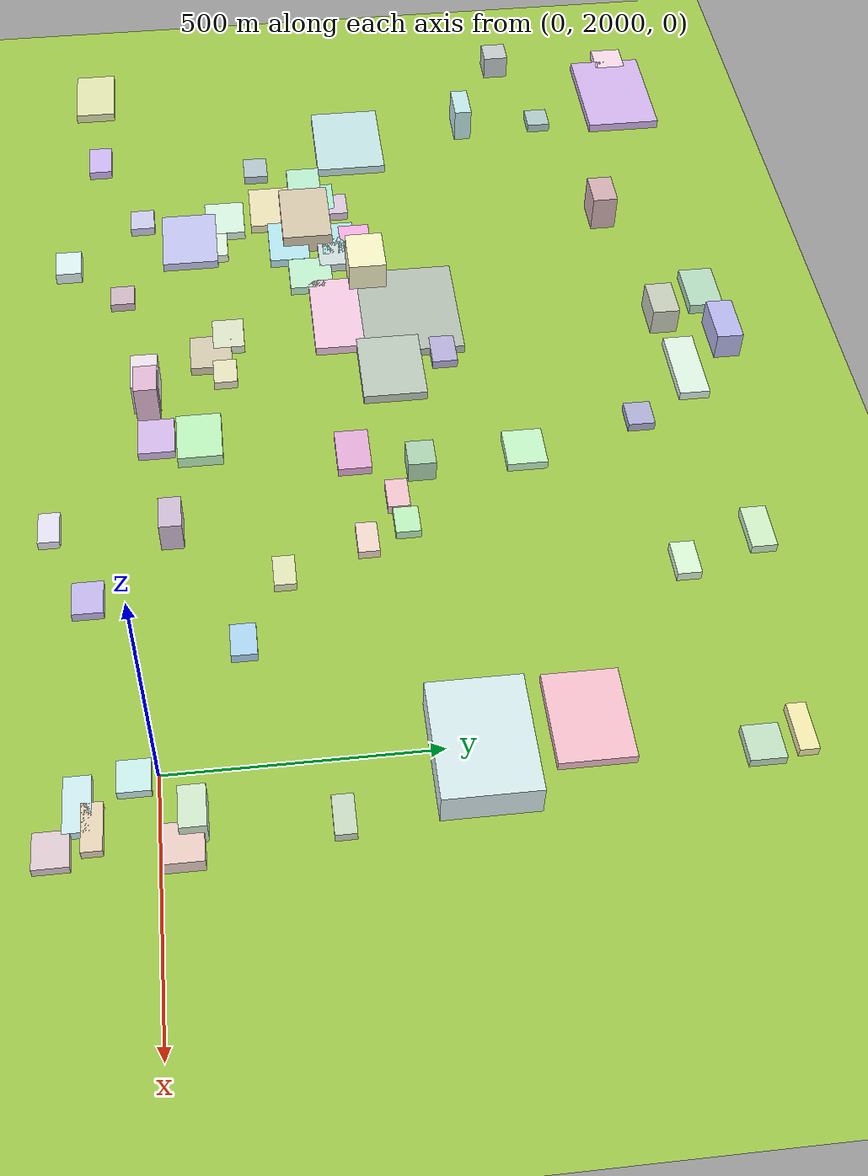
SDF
<sdf version="1.9">
 <world name="city_map">
  <model name="ground_plane">
   <static>1</static>
   <link name="link">
    <collision name="collision">
     <geometry><plane><normal>0 0 1</normal><size>11000 11000</size></plane></geometry>
    </collision>
    <visual name="visual">
     <geometry><plane><normal>0 0 1</normal><size>11000 11000</size></plane></geometry>
     <material>
      <ambient>0.551 0.712 0.210 1</ambient>
      <diffuse>0.651 0.812 0.310 1</diffuse>
      <specular>0.1 0.1 0.05 1</specular>
     </material>
    </visual>
   </link>
  </model>
  <model name="building_605152010">
   <static>1</static>
   <pose>-1090.0004392026135 2561.046129092921 10.0 0 0 0</pose>
   <link name="link">
    <collision name="collision">
     <geometry><box><size>253.57387508941096 210.33389999959695 20</size></box></geometry>
    </collision>
    <visual name="visual">
     <cast_shadows>false</cast_shadows>
     <geometry><box><size>253.57387508941096 210.33389999959695 20</size></box></geometry>
     <material>
      <ambient>0.630 0.675 0.625 1</ambient>
      <diffuse>0.730 0.775 0.725 1</diffuse>
      <specular>0.219 0.233 0.217 1</specular>
      <emissive>0.01 0.01 0.01 1</emissive>
     </material>
    </visual>
   </link>
  </model>
  <model name="building_438225687">
   <static>1</static>
   <pose>-1810.3527287770924 3158.581528062216 10.0 0 0 0</pose>
   <link name="link">
    <collision name="collision">
     <geometry><box><size>254.80506294616396 167.55449999971006 20</size></box></geometry>
    </collision>
    <visual name="visual">
     <cast_shadows>false</cast_shadows>
     <geometry><box><size>254.80506294616396 167.55449999971006 20</size></box></geometry>
     <material>
      <ambient>0.753 0.633 0.860 1</ambient>
      <diffuse>0.853 0.733 0.960 1</diffuse>
      <specular>0.256 0.220 0.288 1</specular>
      <emissive>0.01 0.01 0.01 1</emissive>
     </material>
    </visual>
   </link>
  </model>
  <model name="building_968490449">
   <static>1</static>
   <pose>21.204105575061124 2558.1423232748857 34.97503796928707 0 0 0</pose>
   <link name="link">
    <collision name="collision">
     <geometry><box><size>232.54499999967493 177.1502782101934 69.95007593857414</size></box></geometry>
    </collision>
    <visual name="visual">
     <cast_shadows>false</cast_shadows>
     <geometry><box><size>232.54499999967493 177.1502782101934 69.95007593857414</size></box></geometry>
     <material>
      <ambient>0.772 0.850 0.857 1</ambient>
      <diffuse>0.872 0.950 0.957 1</diffuse>
      <specular>0.261 0.285 0.287 1</specular>
      <emissive>0.01 0.01 0.01 1</emissive>
     </material>
    </visual>
   </link>
  </model>
  <model name="building_922311697">
   <static>1</static>
   <pose>-1689.259264352267 2481.973242355033 10.0 0 0 0</pose>
   <link name="link">
    <collision name="collision">
     <geometry><box><size>213.8525999997043 157.81866710290294 20</size></box></geometry>
    </collision>
    <visual name="visual">
     <cast_shadows>false</cast_shadows>
     <geometry><box><size>213.8525999997043 157.81866710290294 20</size></box></geometry>
     <material>
      <ambient>0.695 0.823 0.822 1</ambient>
      <diffuse>0.795 0.923 0.922 1</diffuse>
      <specular>0.239 0.277 0.277 1</specular>
      <emissive>0.01 0.01 0.01 1</emissive>
     </material>
    </visual>
   </link>
  </model>
  <model name="building_429063418">
   <static>1</static>
   <pose>-1093.9294689881126 2416.256806151669 10.0 0 0 0</pose>
   <link name="link">
    <collision name="collision">
     <geometry><box><size>212.6112206124058 131.37960000049986 20</size></box></geometry>
    </collision>
    <visual name="visual">
     <cast_shadows>false</cast_shadows>
     <geometry><box><size>212.6112206124058 131.37960000049986 20</size></box></geometry>
     <material>
      <ambient>0.891 0.723 0.816 1</ambient>
      <diffuse>0.991 0.823 0.916 1</diffuse>
      <specular>0.297 0.247 0.275 1</specular>
      <emissive>0.01 0.01 0.01 1</emissive>
     </material>
    </visual>
   </link>
  </model>
  <model name="building_104849475">
   <static>1</static>
   <pose>-30.34658473190393 2755.004606092411 10.0 0 0 0</pose>
   <link name="link">
    <collision name="collision">
     <geometry><box><size>183.76518512480968 140.95889999966005 20</size></box></geometry>
    </collision>
    <visual name="visual">
     <cast_shadows>false</cast_shadows>
     <geometry><box><size>183.76518512480968 140.95889999966005 20</size></box></geometry>
     <material>
      <ambient>0.898 0.683 0.735 1</ambient>
      <diffuse>0.998 0.783 0.835 1</diffuse>
      <specular>0.299 0.235 0.251 1</specular>
      <emissive>0.01 0.01 0.01 1</emissive>
     </material>
    </visual>
   </link>
  </model>
  <model name="building_554772582">
   <static>1</static>
   <pose>-921.6186555184223 2504.428664548281 10.5 0 0 0</pose>
   <link name="link">
    <collision name="collision">
     <geometry><box><size>171.53940000053325 132.90053230693326 21.0</size></box></geometry>
    </collision>
    <visual name="visual">
     <cast_shadows>false</cast_shadows>
     <geometry><box><size>171.53940000053325 132.90053230693326 21.0</size></box></geometry>
     <material>
      <ambient>0.664 0.719 0.663 1</ambient>
      <diffuse>0.764 0.819 0.763 1</diffuse>
      <specular>0.229 0.246 0.229 1</specular>
      <emissive>0.01 0.01 0.01 1</emissive>
     </material>
    </visual>
   </link>
  </model>
  <model name="building_875252734">
   <static>1</static>
   <pose>-1368.621694239439 2093.9339026299212 10.0 0 0 0</pose>
   <link name="link">
    <collision name="collision">
     <geometry><box><size>161.66039999944815 121.40120152400146 20</size></box></geometry>
    </collision>
    <visual name="visual">
     <cast_shadows>false</cast_shadows>
     <geometry><box><size>161.66039999944815 121.40120152400146 20</size></box></geometry>
     <material>
      <ambient>0.693 0.707 0.875 1</ambient>
      <diffuse>0.793 0.807 0.975 1</diffuse>
      <specular>0.238 0.242 0.293 1</specular>
      <emissive>0.01 0.01 0.01 1</emissive>
     </material>
    </visual>
   </link>
  </model>
  <model name="building_58508939">
   <static>1</static>
   <pose>-1403.71616891745 2359.1274486803854 22.5 0 0 0</pose>
   <link name="link">
    <collision name="collision">
     <geometry><box><size>166.97730000006317 109.72997055668385 45.0</size></box></geometry>
    </collision>
    <visual name="visual">
     <cast_shadows>false</cast_shadows>
     <geometry><box><size>166.97730000006317 109.72997055668385 45.0</size></box></geometry>
     <material>
      <ambient>0.776 0.714 0.605 1</ambient>
      <diffuse>0.876 0.814 0.705 1</diffuse>
      <specular>0.263 0.244 0.212 1</specular>
      <emissive>0.01 0.01 0.01 1</emissive>
     </material>
    </visual>
   </link>
  </model>
  <model name="building_4951930">
   <static>1</static>
   <pose>-1928.4442252635147 1877.6238957390942 10.5 0 0 0</pose>
   <link name="link">
    <collision name="collision">
     <geometry><box><size>155.16514669670994 90.84239999999966 21.0</size></box></geometry>
    </collision>
    <visual name="visual">
     <cast_shadows>false</cast_shadows>
     <geometry><box><size>155.16514669670994 90.84239999999966 21.0</size></box></geometry>
     <material>
      <ambient>0.812 0.830 0.618 1</ambient>
      <diffuse>0.912 0.930 0.718 1</diffuse>
      <specular>0.274 0.279 0.215 1</specular>
      <emissive>0.01 0.01 0.01 1</emissive>
     </material>
    </visual>
   </link>
  </model>
  <model name="building_157729227">
   <static>1</static>
   <pose>-1461.0033139935167 2281.839985267316 10.0 0 0 0</pose>
   <link name="link">
    <collision name="collision">
     <geometry><box><size>130.0722992589496 93.61740000009178 20</size></box></geometry>
    </collision>
    <visual name="visual">
     <cast_shadows>false</cast_shadows>
     <geometry><box><size>130.0722992589496 93.61740000009178 20</size></box></geometry>
     <material>
      <ambient>0.856 0.811 0.643 1</ambient>
      <diffuse>0.956 0.911 0.743 1</diffuse>
      <specular>0.287 0.273 0.223 1</specular>
      <emissive>0.01 0.01 0.01 1</emissive>
     </material>
    </visual>
   </link>
  </model>
  <model name="building_679973955">
   <static>1</static>
   <pose>-1338.297880740061 2316.1548786232356 10.0 0 0 0</pose>
   <link name="link">
    <collision name="collision">
     <geometry><box><size>126.50670000034125 88.42412519617244 20</size></box></geometry>
    </collision>
    <visual name="visual">
     <cast_shadows>false</cast_shadows>
     <geometry><box><size>126.50670000034125 88.42412519617244 20</size></box></geometry>
     <material>
      <ambient>0.633 0.837 0.875 1</ambient>
      <diffuse>0.733 0.937 0.975 1</diffuse>
      <specular>0.220 0.281 0.293 1</specular>
      <emissive>0.01 0.01 0.01 1</emissive>
     </material>
    </visual>
   </link>
  </model>
  <model name="building_557447676">
   <static>1</static>
   <pose>-758.6286345135179 2095.9711284665427 13.501403675846216 0 0 0</pose>
   <link name="link">
    <collision name="collision">
     <geometry><box><size>115.70640000032029 90.99372598987674 27.002807351692432</size></box></geometry>
    </collision>
    <visual name="visual">
     <cast_shadows>false</cast_shadows>
     <geometry><box><size>115.70640000032029 90.99372598987674 27.002807351692432</size></box></geometry>
     <material>
      <ambient>0.669 0.891 0.663 1</ambient>
      <diffuse>0.769 0.991 0.763 1</diffuse>
      <specular>0.231 0.297 0.229 1</specular>
      <emissive>0.01 0.01 0.01 1</emissive>
     </material>
    </visual>
   </link>
  </model>
  <model name="building_799010972">
   <static>1</static>
   <pose>-859.2276833179002 3122.506433203267 10.0 0 0 0</pose>
   <link name="link">
    <collision name="collision">
     <geometry><box><size>163.3875567000238 63.114600000126586 20</size></box></geometry>
    </collision>
    <visual name="visual">
     <cast_shadows>false</cast_shadows>
     <geometry><box><size>163.3875567000238 63.114600000126586 20</size></box></geometry>
     <material>
      <ambient>0.803 0.885 0.819 1</ambient>
      <diffuse>0.903 0.985 0.919 1</diffuse>
      <specular>0.271 0.296 0.276 1</specular>
      <emissive>0.01 0.01 0.01 1</emissive>
     </material>
    </visual>
   </link>
  </model>
  <model name="building_758838723">
   <static>1</static>
   <pose>-1431.7924603986364 2175.704629955954 10.0 0 0 0</pose>
   <link name="link">
    <collision name="collision">
     <geometry><box><size>104.97270000028891 87.89369583546363 20</size></box></geometry>
    </collision>
    <visual name="visual">
     <cast_shadows>false</cast_shadows>
     <geometry><box><size>104.97270000028891 87.89369583546363 20</size></box></geometry>
     <material>
      <ambient>0.774 0.889 0.813 1</ambient>
      <diffuse>0.874 0.989 0.913 1</diffuse>
      <specular>0.262 0.297 0.274 1</specular>
      <emissive>0.01 0.01 0.01 1</emissive>
     </material>
    </visual>
   </link>
  </model>
  <model name="building_178629959">
   <static>1</static>
   <pose>-1296.613016695994 2425.5703540661852 10.0 0 0 0</pose>
   <link name="link">
    <collision name="collision">
     <geometry><box><size>98.20403414232044 90.587100000171 20</size></box></geometry>
    </collision>
    <visual name="visual">
     <cast_shadows>false</cast_shadows>
     <geometry><box><size>98.20403414232044 90.587100000171 20</size></box></geometry>
     <material>
      <ambient>0.743 0.798 0.800 1</ambient>
      <diffuse>0.843 0.898 0.900 1</diffuse>
      <specular>0.253 0.269 0.270 1</specular>
      <emissive>0.01 0.01 0.01 1</emissive>
     </material>
    </visual>
   </link>
  </model>
  <model name="building_101976543">
   <static>1</static>
   <pose>-1227.763648271684 2357.811972986206 10.0 0 0 0</pose>
   <link name="link">
    <collision name="collision">
     <geometry><box><size>94.03376214523708 93.69510000021108 20</size></box></geometry>
    </collision>
    <visual name="visual">
     <cast_shadows>false</cast_shadows>
     <geometry><box><size>94.03376214523708 93.69510000021108 20</size></box></geometry>
     <material>
      <ambient>0.680 0.879 0.735 1</ambient>
      <diffuse>0.780 0.979 0.835 1</diffuse>
      <specular>0.234 0.294 0.251 1</specular>
      <emissive>0.01 0.01 0.01 1</emissive>
     </material>
    </visual>
   </link>
  </model>
  <model name="building_751161418">
   <static>1</static>
   <pose>-1217.4440083890572 2479.5587635785705 41.850076509856414 0 0 0</pose>
   <link name="link">
    <collision name="collision">
     <geometry><box><size>106.4933999999198 81.29943594331169 83.70015301971283</size></box></geometry>
    </collision>
    <visual name="visual">
     <cast_shadows>false</cast_shadows>
     <geometry><box><size>106.4933999999198 81.29943594331169 83.70015301971283</size></box></geometry>
     <material>
      <ambient>0.896 0.885 0.703 1</ambient>
      <diffuse>0.996 0.985 0.803 1</diffuse>
      <specular>0.299 0.296 0.241 1</specular>
      <emissive>0.01 0.01 0.01 1</emissive>
     </material>
    </visual>
   </link>
  </model>
  <model name="building_145806836">
   <static>1</static>
   <pose>-1086.0829913904113 3206.6516495671167 12.0 0 0 0</pose>
   <link name="link">
    <collision name="collision">
     <geometry><box><size>114.50759999971893 72.40457650954914 24.0</size></box></geometry>
    </collision>
    <visual name="visual">
     <cast_shadows>false</cast_shadows>
     <geometry><box><size>114.50759999971893 72.40457650954914 24.0</size></box></geometry>
     <material>
      <ambient>0.635 0.788 0.676 1</ambient>
      <diffuse>0.735 0.888 0.776 1</diffuse>
      <specular>0.221 0.266 0.233 1</specular>
      <emissive>0.01 0.01 0.01 1</emissive>
     </material>
    </visual>
   </link>
  </model>
  <model name="building_259324709">
   <static>1</static>
   <pose>-1315.5473584711694 2465.7864165679507 10.0 0 0 0</pose>
   <link name="link">
    <collision name="collision">
     <geometry><box><size>119.75877242912912 68.80889999963102 20</size></box></geometry>
    </collision>
    <visual name="visual">
     <cast_shadows>false</cast_shadows>
     <geometry><box><size>119.75877242912912 68.80889999963102 20</size></box></geometry>
     <material>
      <ambient>0.890 0.615 0.824 1</ambient>
      <diffuse>0.990 0.715 0.924 1</diffuse>
      <specular>0.297 0.214 0.277 1</specular>
      <emissive>0.01 0.01 0.01 1</emissive>
     </material>
    </visual>
   </link>
  </model>
  <model name="building_804813063">
   <static>1</static>
   <pose>-1001.8836837868802 2128.302864517569 10.0 0 0 0</pose>
   <link name="link">
    <collision name="collision">
     <geometry><box><size>92.37026483995652 87.5345999999908 20</size></box></geometry>
    </collision>
    <visual name="visual">
     <cast_shadows>false</cast_shadows>
     <geometry><box><size>92.37026483995652 87.5345999999908 20</size></box></geometry>
     <material>
      <ambient>0.761 0.725 0.615 1</ambient>
      <diffuse>0.861 0.825 0.715 1</diffuse>
      <specular>0.258 0.248 0.214 1</specular>
      <emissive>0.01 0.01 0.01 1</emissive>
     </material>
    </visual>
   </link>
  </model>
  <model name="building_835252563">
   <static>1</static>
   <pose>-666.4382808632212 2745.808377945315 10.0 0 0 0</pose>
   <link name="link">
    <collision name="collision">
     <geometry><box><size>90.31331120341724 81.16320000046073 20</size></box></geometry>
    </collision>
    <visual name="visual">
     <cast_shadows>false</cast_shadows>
     <geometry><box><size>90.31331120341724 81.16320000046073 20</size></box></geometry>
     <material>
      <ambient>0.694 0.892 0.702 1</ambient>
      <diffuse>0.794 0.992 0.802 1</diffuse>
      <specular>0.238 0.298 0.240 1</specular>
      <emissive>0.01 0.01 0.01 1</emissive>
     </material>
    </visual>
   </link>
  </model>
  <model name="building_911873792">
   <static>1</static>
   <pose>-1336.4380659294807 2427.550187791482 10.0 0 0 0</pose>
   <link name="link">
    <collision name="collision">
     <geometry><box><size>101.28244345079916 72.2054999998889 20</size></box></geometry>
    </collision>
    <visual name="visual">
     <cast_shadows>false</cast_shadows>
     <geometry><box><size>101.28244345079916 72.2054999998889 20</size></box></geometry>
     <material>
      <ambient>0.632 0.837 0.838 1</ambient>
      <diffuse>0.732 0.937 0.938 1</diffuse>
      <specular>0.220 0.281 0.281 1</specular>
      <emissive>0.01 0.01 0.01 1</emissive>
     </material>
    </visual>
   </link>
  </model>
  <model name="building_584296135">
   <static>1</static>
   <pose>-695.0980331462798 2401.5717741028566 10.0 0 0 0</pose>
   <link name="link">
    <collision name="collision">
     <geometry><box><size>101.64079973804154 67.86539999964702 20</size></box></geometry>
    </collision>
    <visual name="visual">
     <cast_shadows>false</cast_shadows>
     <geometry><box><size>101.64079973804154 67.86539999964702 20</size></box></geometry>
     <material>
      <ambient>0.830 0.604 0.784 1</ambient>
      <diffuse>0.930 0.704 0.884 1</diffuse>
      <specular>0.279 0.211 0.265 1</specular>
      <emissive>0.01 0.01 0.01 1</emissive>
     </material>
    </visual>
   </link>
  </model>
  <model name="building_69752898">
   <static>1</static>
   <pose>-773.05140017166 2008.8412900454723 10.0 0 0 0</pose>
   <link name="link">
    <collision name="collision">
     <geometry><box><size>90.18519067328326 74.81399999961269 20</size></box></geometry>
    </collision>
    <visual name="visual">
     <cast_shadows>false</cast_shadows>
     <geometry><box><size>90.18519067328326 74.81399999961269 20</size></box></geometry>
     <material>
      <ambient>0.760 0.657 0.850 1</ambient>
      <diffuse>0.860 0.757 0.950 1</diffuse>
      <specular>0.258 0.227 0.285 1</specular>
      <emissive>0.01 0.01 0.01 1</emissive>
     </material>
    </visual>
   </link>
  </model>
  <model name="building_334643381">
   <static>1</static>
   <pose>-945.4470550414569 3219.765687186899 30.720501529912877 0 0 0</pose>
   <link name="link">
    <collision name="collision">
     <geometry><box><size>108.31379999989821 55.17230690770176 61.44100305982575</size></box></geometry>
    </collision>
    <visual name="visual">
     <cast_shadows>false</cast_shadows>
     <geometry><box><size>108.31379999989821 55.17230690770176 61.44100305982575</size></box></geometry>
     <material>
      <ambient>0.646 0.644 0.862 1</ambient>
      <diffuse>0.746 0.744 0.962 1</diffuse>
      <specular>0.224 0.223 0.289 1</specular>
      <emissive>0.01 0.01 0.01 1</emissive>
     </material>
    </visual>
   </link>
  </model>
  <model name="building_175955863">
   <static>1</static>
   <pose>-1524.5088993786062 2364.195395735374 20.22082423482812 0 0 0</pose>
   <link name="link">
    <collision name="collision">
     <geometry><box><size>79.06529999960554 74.39502805240643 40.44164846965624</size></box></geometry>
    </collision>
    <visual name="visual">
     <cast_shadows>false</cast_shadows>
     <geometry><box><size>79.06529999960554 74.39502805240643 40.44164846965624</size></box></geometry>
     <material>
      <ambient>0.654 0.866 0.743 1</ambient>
      <diffuse>0.754 0.966 0.843 1</diffuse>
      <specular>0.226 0.290 0.253 1</specular>
      <emissive>0.01 0.01 0.01 1</emissive>
     </material>
    </visual>
   </link>
  </model>
  <model name="building_184831475">
   <static>1</static>
   <pose>-1053.8020340390708 2167.196533297112 10.0 0 0 0</pose>
   <link name="link">
    <collision name="collision">
     <geometry><box><size>83.61629999994591 66.20221714817427 20</size></box></geometry>
    </collision>
    <visual name="visual">
     <cast_shadows>false</cast_shadows>
     <geometry><box><size>83.61629999994591 66.20221714817427 20</size></box></geometry>
     <material>
      <ambient>0.804 0.825 0.712 1</ambient>
      <diffuse>0.904 0.925 0.812 1</diffuse>
      <specular>0.271 0.278 0.244 1</specular>
      <emissive>0.01 0.01 0.01 1</emissive>
     </material>
    </visual>
   </link>
  </model>
  <model name="building_420347666">
   <static>1</static>
   <pose>148.51814181692026 2039.5545163890877 16.19269606800861 0 0 0</pose>
   <link name="link">
    <collision name="collision">
     <geometry><box><size>75.46889999937889 72.32046461505473 32.38539213601722</size></box></geometry>
    </collision>
    <visual name="visual">
     <cast_shadows>false</cast_shadows>
     <geometry><box><size>75.46889999937889 72.32046461505473 32.38539213601722</size></box></geometry>
     <material>
      <ambient>0.856 0.743 0.711 1</ambient>
      <diffuse>0.956 0.843 0.811 1</diffuse>
      <specular>0.287 0.253 0.243 1</specular>
      <emissive>0.01 0.01 0.01 1</emissive>
     </material>
    </visual>
   </link>
  </model>
  <model name="building_61054031">
   <static>1</static>
   <pose>52.058420547600846 1862.1626189116662 10.0 0 0 0</pose>
   <link name="link">
    <collision name="collision">
     <geometry><box><size>108.40260000014723 48.88834569917706 20</size></box></geometry>
    </collision>
    <visual name="visual">
     <cast_shadows>false</cast_shadows>
     <geometry><box><size>108.40260000014723 48.88834569917706 20</size></box></geometry>
     <material>
      <ambient>0.738 0.861 0.876 1</ambient>
      <diffuse>0.838 0.961 0.976 1</diffuse>
      <specular>0.251 0.288 0.293 1</specular>
      <emissive>0.01 0.01 0.01 1</emissive>
     </material>
    </visual>
   </link>
  </model>
  <model name="building_562005176">
   <static>1</static>
   <pose>-1483.0124475557986 2400.0688249833297 10.0 0 0 0</pose>
   <link name="link">
    <collision name="collision">
     <geometry><box><size>87.92309999979864 59.05658226685598 20</size></box></geometry>
    </collision>
    <visual name="visual">
     <cast_shadows>false</cast_shadows>
     <geometry><box><size>87.92309999979864 59.05658226685598 20</size></box></geometry>
     <material>
      <ambient>0.606 0.859 0.753 1</ambient>
      <diffuse>0.706 0.959 0.853 1</diffuse>
      <specular>0.212 0.288 0.256 1</specular>
      <emissive>0.01 0.01 0.01 1</emissive>
     </material>
    </visual>
   </link>
  </model>
  <model name="building_326389789">
   <static>1</static>
   <pose>-1948.7446176067278 3170.8431766900358 10.0 0 0 0</pose>
   <link name="link">
    <collision name="collision">
     <geometry><box><size>72.4941000001067 71.29148206553474 20</size></box></geometry>
    </collision>
    <visual name="visual">
     <cast_shadows>false</cast_shadows>
     <geometry><box><size>72.4941000001067 71.29148206553474 20</size></box></geometry>
     <material>
      <ambient>0.891 0.784 0.836 1</ambient>
      <diffuse>0.991 0.884 0.936 1</diffuse>
      <specular>0.297 0.265 0.281 1</specular>
      <emissive>0.01 0.01 0.01 1</emissive>
     </material>
    </visual>
   </link>
  </model>
  <model name="building_88513112">
   <static>1</static>
   <pose>-903.8404036243118 1992.0779598854092 39.017588798797625 0 0 0</pose>
   <link name="link">
    <collision name="collision">
     <geometry><box><size>92.129931597508 55.6442999995852 78.03517759759525</size></box></geometry>
    </collision>
    <visual name="visual">
     <cast_shadows>false</cast_shadows>
     <geometry><box><size>92.129931597508 55.6442999995852 78.03517759759525</size></box></geometry>
     <material>
      <ambient>0.860 0.818 0.853 1</ambient>
      <diffuse>0.960 0.918 0.953 1</diffuse>
      <specular>0.288 0.276 0.286 1</specular>
      <emissive>0.01 0.01 0.01 1</emissive>
     </material>
    </visual>
   </link>
  </model>
  <model name="building_915195717">
   <static>1</static>
   <pose>-1021.990940456971 3101.773212506201 30.98475272713488 0 0 0</pose>
   <link name="link">
    <collision name="collision">
     <geometry><box><size>88.09284442895449 57.22049999986467 61.96950545426976</size></box></geometry>
    </collision>
    <visual name="visual">
     <cast_shadows>false</cast_shadows>
     <geometry><box><size>88.09284442895449 57.22049999986467 61.96950545426976</size></box></geometry>
     <material>
      <ambient>0.705 0.731 0.659 1</ambient>
      <diffuse>0.805 0.831 0.759 1</diffuse>
      <specular>0.241 0.249 0.228 1</specular>
      <emissive>0.01 0.01 0.01 1</emissive>
     </material>
    </visual>
   </link>
  </model>
  <model name="building_715932193">
   <static>1</static>
   <pose>-415.08791419402877 3161.7270784679 10.0 0 0 0</pose>
   <link name="link">
    <collision name="collision">
     <geometry><box><size>97.2647766897217 50.34960000001831 20</size></box></geometry>
    </collision>
    <visual name="visual">
     <cast_shadows>false</cast_shadows>
     <geometry><box><size>97.2647766897217 50.34960000001831 20</size></box></geometry>
     <material>
      <ambient>0.742 0.875 0.707 1</ambient>
      <diffuse>0.842 0.975 0.807 1</diffuse>
      <specular>0.253 0.293 0.242 1</specular>
      <emissive>0.01 0.01 0.01 1</emissive>
     </material>
    </visual>
   </link>
  </model>
  <model name="building_833526346">
   <static>1</static>
   <pose>55.26749507491888 3047.977009453978 10.0 0 0 0</pose>
   <link name="link">
    <collision name="collision">
     <geometry><box><size>70.6071000001387 66.1293555828824 20</size></box></geometry>
    </collision>
    <visual name="visual">
     <cast_shadows>false</cast_shadows>
     <geometry><box><size>70.6071000001387 66.1293555828824 20</size></box></geometry>
     <material>
      <ambient>0.690 0.814 0.699 1</ambient>
      <diffuse>0.790 0.914 0.799 1</diffuse>
      <specular>0.237 0.274 0.240 1</specular>
      <emissive>0.01 0.01 0.01 1</emissive>
     </material>
    </visual>
   </link>
  </model>
  <model name="building_54753926">
   <static>1</static>
   <pose>-1672.8957200910197 1891.527488348489 10.0 0 0 0</pose>
   <link name="link">
    <collision name="collision">
     <geometry><box><size>88.38930000051448 51.210538794370514 20</size></box></geometry>
    </collision>
    <visual name="visual">
     <cast_shadows>false</cast_shadows>
     <geometry><box><size>88.38930000051448 51.210538794370514 20</size></box></geometry>
     <material>
      <ambient>0.735 0.645 0.890 1</ambient>
      <diffuse>0.835 0.745 0.990 1</diffuse>
      <specular>0.251 0.224 0.297 1</specular>
      <emissive>0.01 0.01 0.01 1</emissive>
     </material>
    </visual>
   </link>
  </model>
  <model name="building_313299837">
   <static>1</static>
   <pose>-380.11649291354445 1875.389169902062 10.0 0 0 0</pose>
   <link name="link">
    <collision name="collision">
     <geometry><box><size>73.38210000023082 59.70424775157403 20</size></box></geometry>
    </collision>
    <visual name="visual">
     <cast_shadows>false</cast_shadows>
     <geometry><box><size>73.38210000023082 59.70424775157403 20</size></box></geometry>
     <material>
      <ambient>0.690 0.649 0.858 1</ambient>
      <diffuse>0.790 0.749 0.958 1</diffuse>
      <specular>0.237 0.225 0.287 1</specular>
      <emissive>0.01 0.01 0.01 1</emissive>
     </material>
    </visual>
   </link>
  </model>
  <model name="building_312306214">
   <static>1</static>
   <pose>132.98495855197405 1820.1049175822943 10.0 0 0 0</pose>
   <link name="link">
    <collision name="collision">
     <geometry><box><size>68.32050000023315 63.48570532756196 20</size></box></geometry>
    </collision>
    <visual name="visual">
     <cast_shadows>false</cast_shadows>
     <geometry><box><size>68.32050000023315 63.48570532756196 20</size></box></geometry>
     <material>
      <ambient>0.807 0.726 0.753 1</ambient>
      <diffuse>0.907 0.826 0.853 1</diffuse>
      <specular>0.272 0.248 0.256 1</specular>
      <emissive>0.01 0.01 0.01 1</emissive>
     </material>
    </visual>
   </link>
  </model>
  <model name="building_258472394">
   <static>1</static>
   <pose>-1369.230234956589 3037.424708456386 41.48965368307553 0 0 0</pose>
   <link name="link">
    <collision name="collision">
     <geometry><box><size>79.40666154410592 54.37889999978296 82.97930736615106</size></box></geometry>
    </collision>
    <visual name="visual">
     <cast_shadows>false</cast_shadows>
     <geometry><box><size>79.40666154410592 54.37889999978296 82.97930736615106</size></box></geometry>
     <material>
      <ambient>0.751 0.612 0.626 1</ambient>
      <diffuse>0.851 0.712 0.726 1</diffuse>
      <specular>0.255 0.214 0.218 1</specular>
      <emissive>0.01 0.01 0.01 1</emissive>
     </material>
    </visual>
   </link>
  </model>
  <model name="building_61028440">
   <static>1</static>
   <pose>-1082.5209191654205 3211.6103431950733 10.0 0 0 0</pose>
   <link name="link">
    <collision name="collision">
     <geometry><box><size>102.58620000000462 41.288232327685684 20</size></box></geometry>
    </collision>
    <visual name="visual">
     <cast_shadows>false</cast_shadows>
     <geometry><box><size>102.58620000000462 41.288232327685684 20</size></box></geometry>
     <material>
      <ambient>0.739 0.767 0.871 1</ambient>
      <diffuse>0.839 0.867 0.971 1</diffuse>
      <specular>0.252 0.260 0.291 1</specular>
      <emissive>0.01 0.01 0.01 1</emissive>
     </material>
    </visual>
   </link>
  </model>
  <model name="building_154444495">
   <static>1</static>
   <pose>-1307.035725508925 1823.9423565886786 13.5 0 0 0</pose>
   <link name="link">
    <collision name="collision">
     <geometry><box><size>71.96129999940126 55.76865435896623 27.0</size></box></geometry>
    </collision>
    <visual name="visual">
     <cast_shadows>false</cast_shadows>
     <geometry><box><size>71.96129999940126 55.76865435896623 27.0</size></box></geometry>
     <material>
      <ambient>0.799 0.882 0.876 1</ambient>
      <diffuse>0.899 0.982 0.976 1</diffuse>
      <specular>0.270 0.295 0.293 1</specular>
      <emissive>0.01 0.01 0.01 1</emissive>
     </material>
    </visual>
   </link>
  </model>
  <model name="building_281954818">
   <static>1</static>
   <pose>-1343.4984270193793 2152.4829735045764 10.0 0 0 0</pose>
   <link name="link">
    <collision name="collision">
     <geometry><box><size>77.25599999975685 51.32933216205085 20</size></box></geometry>
    </collision>
    <visual name="visual">
     <cast_shadows>false</cast_shadows>
     <geometry><box><size>77.25599999975685 51.32933216205085 20</size></box></geometry>
     <material>
      <ambient>0.818 0.886 0.811 1</ambient>
      <diffuse>0.918 0.986 0.911 1</diffuse>
      <specular>0.275 0.296 0.273 1</specular>
      <emissive>0.01 0.01 0.01 1</emissive>
     </material>
    </visual>
   </link>
  </model>
  <model name="building_949066531">
   <static>1</static>
   <pose>-959.9795214811081 2619.078630488683 10.0 0 0 0</pose>
   <link name="link">
    <collision name="collision">
     <geometry><box><size>74.92431194133674 52.85820000015207 20</size></box></geometry>
    </collision>
    <visual name="visual">
     <cast_shadows>false</cast_shadows>
     <geometry><box><size>74.92431194133674 52.85820000015207 20</size></box></geometry>
     <material>
      <ambient>0.643 0.614 0.791 1</ambient>
      <diffuse>0.743 0.714 0.891 1</diffuse>
      <specular>0.223 0.214 0.267 1</specular>
      <emissive>0.01 0.01 0.01 1</emissive>
     </material>
    </visual>
   </link>
  </model>
  <model name="building_741095355">
   <static>1</static>
   <pose>94.14107590156391 2057.8305660404953 26.83056562132718 0 0 0</pose>
   <link name="link">
    <collision name="collision">
     <geometry><box><size>80.25970433726607 48.18509999996223 53.66113124265436</size></box></geometry>
    </collision>
    <visual name="visual">
     <cast_shadows>false</cast_shadows>
     <geometry><box><size>80.25970433726607 48.18509999996223 53.66113124265436</size></box></geometry>
     <material>
      <ambient>0.756 0.849 0.738 1</ambient>
      <diffuse>0.856 0.949 0.838 1</diffuse>
      <specular>0.257 0.285 0.251 1</specular>
      <emissive>0.01 0.01 0.01 1</emissive>
     </material>
    </visual>
   </link>
  </model>
  <model name="building_836212063">
   <static>1</static>
   <pose>6.744546360120628 1958.3912115759786 10.0 0 0 0</pose>
   <link name="link">
    <collision name="collision">
     <geometry><box><size>63.443470625945736 59.34060000019059 20</size></box></geometry>
    </collision>
    <visual name="visual">
     <cast_shadows>false</cast_shadows>
     <geometry><box><size>63.443470625945736 59.34060000019059 20</size></box></geometry>
     <material>
      <ambient>0.724 0.873 0.857 1</ambient>
      <diffuse>0.824 0.973 0.957 1</diffuse>
      <specular>0.247 0.292 0.287 1</specular>
      <emissive>0.01 0.01 0.01 1</emissive>
     </material>
    </visual>
   </link>
  </model>
  <model name="building_923626339">
   <static>1</static>
   <pose>-1606.0998277398494 2255.5463197056997 10.0 0 0 0</pose>
   <link name="link">
    <collision name="collision">
     <geometry><box><size>67.04483107926619 54.3344999992641 20</size></box></geometry>
    </collision>
    <visual name="visual">
     <cast_shadows>false</cast_shadows>
     <geometry><box><size>67.04483107926619 54.3344999992641 20</size></box></geometry>
     <material>
      <ambient>0.634 0.700 0.732 1</ambient>
      <diffuse>0.734 0.800 0.832 1</diffuse>
      <specular>0.220 0.240 0.250 1</specular>
      <emissive>0.01 0.01 0.01 1</emissive>
     </material>
    </visual>
   </link>
  </model>
  <model name="building_974365075">
   <static>1</static>
   <pose>-354.9946312451002 3004.262187136263 10.5 0 0 0</pose>
   <link name="link">
    <collision name="collision">
     <geometry><box><size>75.64649999987694 47.061198934889475 21.0</size></box></geometry>
    </collision>
    <visual name="visual">
     <cast_shadows>false</cast_shadows>
     <geometry><box><size>75.64649999987694 47.061198934889475 21.0</size></box></geometry>
     <material>
      <ambient>0.791 0.900 0.771 1</ambient>
      <diffuse>0.891 1.000 0.871 1</diffuse>
      <specular>0.267 0.300 0.261 1</specular>
      <emissive>0.01 0.01 0.01 1</emissive>
     </material>
    </visual>
   </link>
  </model>
  <model name="building_392540488">
   <static>1</static>
   <pose>97.13268461512715 1887.7219845419013 10.0 0 0 0</pose>
   <link name="link">
    <collision name="collision">
     <geometry><box><size>92.42970000040884 37.55899179053743 20</size></box></geometry>
    </collision>
    <visual name="visual">
     <cast_shadows>false</cast_shadows>
     <geometry><box><size>92.42970000040884 37.55899179053743 20</size></box></geometry>
     <material>
      <ambient>0.835 0.764 0.651 1</ambient>
      <diffuse>0.935 0.864 0.751 1</diffuse>
      <specular>0.280 0.259 0.225 1</specular>
      <emissive>0.01 0.01 0.01 1</emissive>
     </material>
    </visual>
   </link>
  </model>
  <model name="building_788774111">
   <static>1</static>
   <pose>-647.1058531354674 2532.4835163171156 24.803263880077818 0 0 0</pose>
   <link name="link">
    <collision name="collision">
     <geometry><box><size>61.682699999956014 56.09806417653475 49.606527760155636</size></box></geometry>
    </collision>
    <visual name="visual">
     <cast_shadows>false</cast_shadows>
     <geometry><box><size>61.682699999956014 56.09806417653475 49.606527760155636</size></box></geometry>
     <material>
      <ambient>0.604 0.756 0.614 1</ambient>
      <diffuse>0.704 0.856 0.714 1</diffuse>
      <specular>0.211 0.257 0.214 1</specular>
      <emissive>0.01 0.01 0.01 1</emissive>
     </material>
    </visual>
   </link>
  </model>
  <model name="building_39766">
   <static>1</static>
   <pose>-255.04176094116224 2159.348395374633 10.5 0 0 0</pose>
   <link name="link">
    <collision name="collision">
     <geometry><box><size>69.73309501718492 48.92879999997746 21.0</size></box></geometry>
    </collision>
    <visual name="visual">
     <cast_shadows>false</cast_shadows>
     <geometry><box><size>69.73309501718492 48.92879999997746 21.0</size></box></geometry>
     <material>
      <ambient>0.603 0.771 0.876 1</ambient>
      <diffuse>0.703 0.871 0.976 1</diffuse>
      <specular>0.211 0.261 0.293 1</specular>
      <emissive>0.01 0.01 0.01 1</emissive>
     </material>
    </visual>
   </link>
  </model>
  <model name="building_261917715">
   <static>1</static>
   <pose>31.557201484141956 3123.1587222650296 10.0 0 0 0</pose>
   <link name="link">
    <collision name="collision">
     <geometry><box><size>95.10480000012222 35.77420997210397 20</size></box></geometry>
    </collision>
    <visual name="visual">
     <cast_shadows>false</cast_shadows>
     <geometry><box><size>95.10480000012222 35.77420997210397 20</size></box></geometry>
     <material>
      <ambient>0.891 0.852 0.610 1</ambient>
      <diffuse>0.991 0.952 0.710 1</diffuse>
      <specular>0.297 0.286 0.213 1</specular>
      <emissive>0.01 0.01 0.01 1</emissive>
     </material>
    </visual>
   </link>
  </model>
  <model name="building_339394476">
   <static>1</static>
   <pose>-1958.3157695345215 2879.1829435992613 28.013339959046526 0 0 0</pose>
   <link name="link">
    <collision name="collision">
     <geometry><box><size>58.77404734942323 56.643299999429075 56.02667991809305</size></box></geometry>
    </collision>
    <visual name="visual">
     <cast_shadows>false</cast_shadows>
     <geometry><box><size>58.77404734942323 56.643299999429075 56.02667991809305</size></box></geometry>
     <material>
      <ambient>0.686 0.727 0.722 1</ambient>
      <diffuse>0.786 0.827 0.822 1</diffuse>
      <specular>0.236 0.248 0.247 1</specular>
      <emissive>0.01 0.01 0.01 1</emissive>
     </material>
    </visual>
   </link>
  </model>
  <model name="building_604958974">
   <static>1</static>
   <pose>-1731.088399394892 2762.3884588669075 39.45516191392497 0 0 0</pose>
   <link name="link">
    <collision name="collision">
     <geometry><box><size>85.08149999971693 38.7606111040044 78.91032382784994</size></box></geometry>
    </collision>
    <visual name="visual">
     <cast_shadows>false</cast_shadows>
     <geometry><box><size>85.08149999971693 38.7606111040044 78.91032382784994</size></box></geometry>
     <material>
      <ambient>0.687 0.841 0.844 1</ambient>
      <diffuse>0.787 0.941 0.944 1</diffuse>
      <specular>0.236 0.282 0.283 1</specular>
      <emissive>0.01 0.01 0.01 1</emissive>
     </material>
    </visual>
   </link>
  </model>
  <model name="building_776652899">
   <static>1</static>
   <pose>-1445.859020950049 1988.3761338190473 10.136126441441053 0 0 0</pose>
   <link name="link">
    <collision name="collision">
     <geometry><box><size>61.92689999965495 53.20798606145968 20.272252882882107</size></box></geometry>
    </collision>
    <visual name="visual">
     <cast_shadows>false</cast_shadows>
     <geometry><box><size>61.92689999965495 53.20798606145968 20.272252882882107</size></box></geometry>
     <material>
      <ambient>0.727 0.729 0.862 1</ambient>
      <diffuse>0.827 0.829 0.962 1</diffuse>
      <specular>0.248 0.249 0.289 1</specular>
      <emissive>0.01 0.01 0.01 1</emissive>
     </material>
    </visual>
   </link>
  </model>
  <model name="building_439799254">
   <static>1</static>
   <pose>-732.0603037065115 2994.362413947486 10.0 0 0 0</pose>
   <link name="link">
    <collision name="collision">
     <geometry><box><size>60.09539999954683 54.75632546796495 20</size></box></geometry>
    </collision>
    <visual name="visual">
     <cast_shadows>false</cast_shadows>
     <geometry><box><size>60.09539999954683 54.75632546796495 20</size></box></geometry>
     <material>
      <ambient>0.610 0.612 0.764 1</ambient>
      <diffuse>0.710 0.712 0.864 1</diffuse>
      <specular>0.213 0.214 0.259 1</specular>
      <emissive>0.01 0.01 0.01 1</emissive>
     </material>
    </visual>
   </link>
  </model>
  <model name="building_327684720">
   <static>1</static>
   <pose>-1454.7639955670115 2434.130015201711 10.0 0 0 0</pose>
   <link name="link">
    <collision name="collision">
     <geometry><box><size>67.4102999998496 48.32229597584434 20</size></box></geometry>
    </collision>
    <visual name="visual">
     <cast_shadows>false</cast_shadows>
     <geometry><box><size>67.4102999998496 48.32229597584434 20</size></box></geometry>
     <material>
      <ambient>0.788 0.714 0.797 1</ambient>
      <diffuse>0.888 0.814 0.897 1</diffuse>
      <specular>0.266 0.244 0.269 1</specular>
      <emissive>0.01 0.01 0.01 1</emissive>
     </material>
    </visual>
   </link>
  </model>
  <model name="building_552597096">
   <static>1</static>
   <pose>-866.6348039173771 1994.504881822185 47.048261348246086 0 0 0</pose>
   <link name="link">
    <collision name="collision">
     <geometry><box><size>68.60125856729512 47.3636999998277 94.09652269649217</size></box></geometry>
    </collision>
    <visual name="visual">
     <cast_shadows>false</cast_shadows>
     <geometry><box><size>68.60125856729512 47.3636999998277 94.09652269649217</size></box></geometry>
     <material>
      <ambient>0.811 0.658 0.767 1</ambient>
      <diffuse>0.911 0.758 0.867 1</diffuse>
      <specular>0.273 0.227 0.260 1</specular>
      <emissive>0.01 0.01 0.01 1</emissive>
     </material>
    </visual>
   </link>
  </model>
  <model name="building_327054547">
   <static>1</static>
   <pose>-942.4152152919091 2155.9252880689914 10.0 0 0 0</pose>
   <link name="link">
    <collision name="collision">
     <geometry><box><size>65.49000000028116 48.88542501182571 20</size></box></geometry>
    </collision>
    <visual name="visual">
     <cast_shadows>false</cast_shadows>
     <geometry><box><size>65.49000000028116 48.88542501182571 20</size></box></geometry>
     <material>
      <ambient>0.841 0.826 0.673 1</ambient>
      <diffuse>0.941 0.926 0.773 1</diffuse>
      <specular>0.282 0.278 0.232 1</specular>
      <emissive>0.01 0.01 0.01 1</emissive>
     </material>
    </visual>
   </link>
  </model>
  <model name="building_637639819">
   <static>1</static>
   <pose>-530.1329691035515 2035.4125422348757 34.76106785660574 0 0 0</pose>
   <link name="link">
    <collision name="collision">
     <geometry><box><size>72.4083424216932 44.089200000207995 69.52213571321148</size></box></geometry>
    </collision>
    <visual name="visual">
     <cast_shadows>false</cast_shadows>
     <geometry><box><size>72.4083424216932 44.089200000207995 69.52213571321148</size></box></geometry>
     <material>
      <ambient>0.744 0.667 0.765 1</ambient>
      <diffuse>0.844 0.767 0.865 1</diffuse>
      <specular>0.253 0.230 0.260 1</specular>
      <emissive>0.01 0.01 0.01 1</emissive>
     </material>
    </visual>
   </link>
  </model>
  <model name="building_469129468">
   <static>1</static>
   <pose>-572.9436276672817 2477.9452448410902 10.0 0 0 0</pose>
   <link name="link">
    <collision name="collision">
     <geometry><box><size>69.63029999976555 44.399702914579464 20</size></box></geometry>
    </collision>
    <visual name="visual">
     <cast_shadows>false</cast_shadows>
     <geometry><box><size>69.63029999976555 44.399702914579464 20</size></box></geometry>
     <material>
      <ambient>0.889 0.698 0.747 1</ambient>
      <diffuse>0.989 0.798 0.847 1</diffuse>
      <specular>0.297 0.239 0.254 1</specular>
      <emissive>0.01 0.01 0.01 1</emissive>
     </material>
    </visual>
   </link>
  </model>
  <model name="building_297232994">
   <static>1</static>
   <pose>-1727.7973795341184 2950.770708039862 10.0 0 0 0</pose>
   <link name="link">
    <collision name="collision">
     <geometry><box><size>58.78657631022385 52.33649999957635 20</size></box></geometry>
    </collision>
    <visual name="visual">
     <cast_shadows>false</cast_shadows>
     <geometry><box><size>58.78657631022385 52.33649999957635 20</size></box></geometry>
     <material>
      <ambient>0.612 0.724 0.709 1</ambient>
      <diffuse>0.712 0.824 0.809 1</diffuse>
      <specular>0.214 0.247 0.243 1</specular>
      <emissive>0.01 0.01 0.01 1</emissive>
     </material>
    </visual>
   </link>
  </model>
  <model name="building_768481079">
   <static>1</static>
   <pose>-556.1805418203169 1798.8642654111002 10.0 0 0 0</pose>
   <link name="link">
    <collision name="collision">
     <geometry><box><size>72.99929520740778 41.89139999976277 20</size></box></geometry>
    </collision>
    <visual name="visual">
     <cast_shadows>false</cast_shadows>
     <geometry><box><size>72.99929520740778 41.89139999976277 20</size></box></geometry>
     <material>
      <ambient>0.832 0.818 0.886 1</ambient>
      <diffuse>0.932 0.918 0.986 1</diffuse>
      <specular>0.280 0.275 0.296 1</specular>
      <emissive>0.01 0.01 0.01 1</emissive>
     </material>
    </visual>
   </link>
  </model>
  <model name="building_450021160">
   <static>1</static>
   <pose>-504.2710993408622 2488.7334886899675 10.0 0 0 0</pose>
   <link name="link">
    <collision name="collision">
     <geometry><box><size>62.19330000040202 49.13858973903673 20</size></box></geometry>
    </collision>
    <visual name="visual">
     <cast_shadows>false</cast_shadows>
     <geometry><box><size>62.19330000040202 49.13858973903673 20</size></box></geometry>
     <material>
      <ambient>0.674 0.882 0.670 1</ambient>
      <diffuse>0.774 0.982 0.770 1</diffuse>
      <specular>0.232 0.295 0.231 1</specular>
      <emissive>0.01 0.01 0.01 1</emissive>
     </material>
    </visual>
   </link>
  </model>
  <model name="building_269386929">
   <static>1</static>
   <pose>-1358.6162172221327 2096.4883533522293 10.0 0 0 0</pose>
   <link name="link">
    <collision name="collision">
     <geometry><box><size>61.57170000023626 49.216749787614084 20</size></box></geometry>
    </collision>
    <visual name="visual">
     <cast_shadows>false</cast_shadows>
     <geometry><box><size>61.57170000023626 49.216749787614084 20</size></box></geometry>
     <material>
      <ambient>0.800 0.606 0.674 1</ambient>
      <diffuse>0.900 0.706 0.774 1</diffuse>
      <specular>0.270 0.212 0.232 1</specular>
      <emissive>0.01 0.01 0.01 1</emissive>
     </material>
    </visual>
   </link>
  </model>
  <model name="building_335401101">
   <static>1</static>
   <pose>-468.9143862788783 2408.407214310221 10.0 0 0 0</pose>
   <link name="link">
    <collision name="collision">
     <geometry><box><size>71.95020000006025 41.463720249811075 20</size></box></geometry>
    </collision>
    <visual name="visual">
     <cast_shadows>false</cast_shadows>
     <geometry><box><size>71.95020000006025 41.463720249811075 20</size></box></geometry>
     <material>
      <ambient>0.883 0.786 0.732 1</ambient>
      <diffuse>0.983 0.886 0.832 1</diffuse>
      <specular>0.295 0.266 0.250 1</specular>
      <emissive>0.01 0.01 0.01 1</emissive>
     </material>
    </visual>
   </link>
  </model>
  <model name="building_354000502">
   <static>1</static>
   <pose>118.20506039781445 2309.8633306800325 10.0 0 0 0</pose>
   <link name="link">
    <collision name="collision">
     <geometry><box><size>76.7315549966623 38.63909999961379 20</size></box></geometry>
    </collision>
    <visual name="visual">
     <cast_shadows>false</cast_shadows>
     <geometry><box><size>76.7315549966623 38.63909999961379 20</size></box></geometry>
     <material>
      <ambient>0.716 0.789 0.686 1</ambient>
      <diffuse>0.816 0.889 0.786 1</diffuse>
      <specular>0.245 0.267 0.236 1</specular>
      <emissive>0.01 0.01 0.01 1</emissive>
     </material>
    </visual>
   </link>
  </model>
  <model name="building_967717919">
   <static>1</static>
   <pose>-1196.9849394520033 1942.3102380773944 10.0 0 0 0</pose>
   <link name="link">
    <collision name="collision">
     <geometry><box><size>56.35473581247513 52.14780000052599 20</size></box></geometry>
    </collision>
    <visual name="visual">
     <cast_shadows>false</cast_shadows>
     <geometry><box><size>56.35473581247513 52.14780000052599 20</size></box></geometry>
     <material>
      <ambient>0.736 0.647 0.700 1</ambient>
      <diffuse>0.836 0.747 0.800 1</diffuse>
      <specular>0.251 0.224 0.240 1</specular>
      <emissive>0.01 0.01 0.01 1</emissive>
     </material>
    </visual>
   </link>
  </model>
  <model name="building_289758972">
   <static>1</static>
   <pose>-405.76408218490195 2243.9665124079643 10.0 0 0 0</pose>
   <link name="link">
    <collision name="collision">
     <geometry><box><size>68.54366269638174 42.5684999997884 20</size></box></geometry>
    </collision>
    <visual name="visual">
     <cast_shadows>false</cast_shadows>
     <geometry><box><size>68.54366269638174 42.5684999997884 20</size></box></geometry>
     <material>
      <ambient>0.819 0.841 0.653 1</ambient>
      <diffuse>0.919 0.941 0.753 1</diffuse>
      <specular>0.276 0.282 0.226 1</specular>
      <emissive>0.01 0.01 0.01 1</emissive>
     </material>
    </visual>
   </link>
  </model>
 </world>
</sdf>
